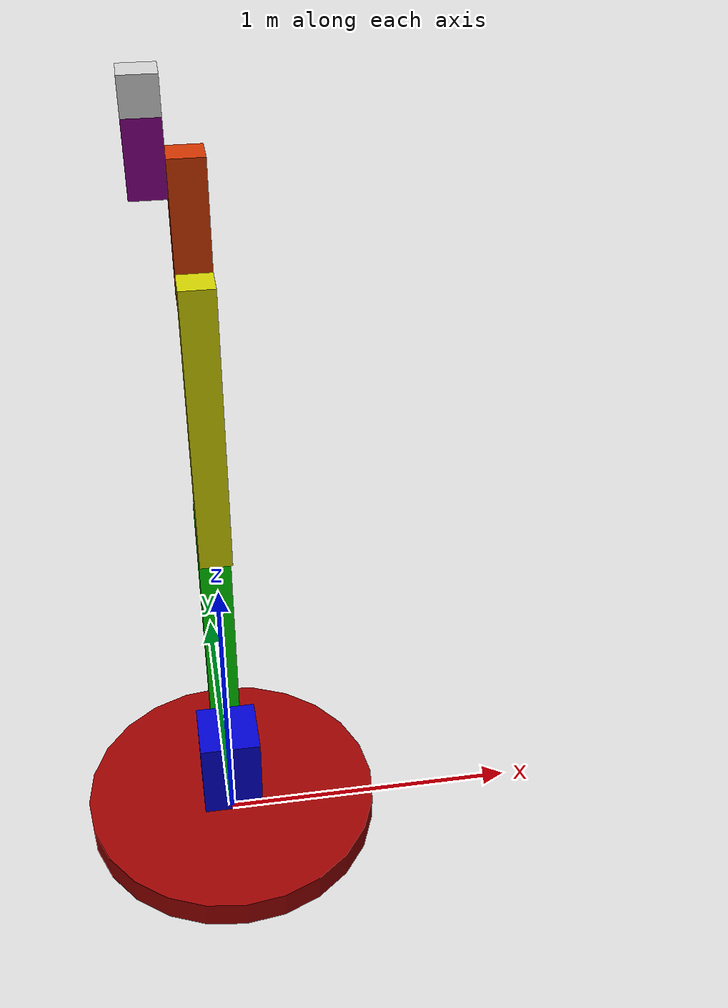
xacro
<?xml version="1.0"?>

<!-- RRRRRR (simple) manipulator -->

<robot name="simple_manipulator" xmlns:xacro="http://www.ros.org/wiki/xacro">

  <!-- Constants for robot dimensions -->
  <xacro:property name="mass_base_link"  value="1.0" />
  <xacro:property name="radius_base_link"  value="0.5" />
  <xacro:property name="length_base_link"  value="0.1" />

  <xacro:property name="mass_shoulder_link"  value="1.0" />
  <xacro:property name="x_length_shoulder_link"  value="0.2" />
  <xacro:property name="y_length_shoulder_link"  value="0.2" />
  <xacro:property name="z_length_shoulder_link"  value="0.3" />

  <xacro:property name="mass_arm_link"  value="5.0" />
  <xacro:property name="x_length_arm_link"  value="0.1" />
  <xacro:property name="y_length_arm_link"  value="0.1" />
  <xacro:property name="z_length_arm_link"  value="0.9" />

  <xacro:property name="mass_forearm_link"  value="5.0" />
  <xacro:property name="x_length_forearm_link"  value="0.1" />
  <xacro:property name="y_length_forearm_link"  value="0.1" />
  <xacro:property name="z_length_forearm_link"  value="0.9" />

  <xacro:property name="mass_wrist_1_link"  value="1.0" />
  <xacro:property name="x_length_wrist_1_link"  value="0.1" />
  <xacro:property name="y_length_wrist_1_link"  value="0.1" />
  <xacro:property name="z_length_wrist_1_link"  value="0.4" />

  <xacro:property name="mass_wrist_2_link"  value="1.0" />
  <xacro:property name="x_length_wrist_2_link"  value="0.1" />
  <xacro:property name="y_length_wrist_2_link"  value="0.1" />
  <xacro:property name="z_length_wrist_2_link"  value="0.2" />

  <xacro:property name="mass_wrist_3_link"  value="1.0" />
  <xacro:property name="x_length_wrist_3_link"  value="0.1" />
  <xacro:property name="y_length_wrist_3_link"  value="0.1" />
  <xacro:property name="z_length_wrist_3_link"  value="0.1" />

  <material name="red">
    <color rgba="0.6 0.0 0.0 1.0"/>
  </material>

  <material name="green">
    <color rgba="0.0 0.8 0.0 1.0"/>
  </material>

  <material name="blue">
    <color rgba="0.0 0.0 0.8 1.0"/>
  </material>

  <material name="yellow">
    <color rgba="0.8 0.8 0.0 1.0"/>
  </material>

  <material name="orange">
    <color rgba="0.8 0.2 0.0 1.0"/>
  </material>

  <material name="purple">
    <color rgba="0.5 0.0 0.5 1.0"/>
  </material>

  <material name="gray">
    <color rgba="0.8 0.8 0.8 1.0"/>
  </material>

  <xacro:macro name="cylindrical_link" params="name length radius mass color">
    <link name="${name}">
      <collision>
        <origin xyz="0 0 ${length/2}" rpy="0 0 0"/>
        <geometry>
          <cylinder length="${length}" radius="${radius}"/>
        </geometry>
      </collision>

      <visual>
        <origin xyz="0 0 ${length/2}" rpy="0 0 0"/>
        <geometry>
          <cylinder length="${length}" radius="${radius}"/>
        </geometry>
        <material name="${color}"/>
      </visual>

      <inertial>
        <origin xyz="0 0 0" rpy="0 0 0"/>
        <mass value="${mass}"/>
        <inertia
          ixx="${(1/12.)*mass*((3*radius**2) + (length**2))}" ixy="0.0" ixz="0.0"
          iyy="${(1/12.)*mass*((3*radius**2) + (length**2))}" iyz="0.0"
          izz="${0.5*mass*radius**2}"/>
      </inertial>
    </link>
  </xacro:macro>

  <xacro:macro name="cuboid_link" params="name x_length y_length z_length mass color">

    <link name="${name}">
      <collision>
        <origin xyz="0 0 ${z_length/2}" rpy="0 0 0"/>
        <geometry>
          <box size="${x_length} ${y_length} ${z_length}"/>
        </geometry>
      </collision>

      <visual>
        <origin xyz="0 0 ${z_length/2}" rpy="0 0 0"/>
        <geometry>
          <box size="${x_length} ${y_length} ${z_length}"/>
        </geometry>
        <material name="${color}"/>
      </visual>

      <inertial>
        <origin xyz="0 0 0" rpy="0 0 0"/>
        <mass value="${mass}"/>
        <inertia
          ixx="${(1/12.)*mass*(y_length**2 + z_length**2)}" ixy="0.0" ixz="0.0"
          iyy="${(1/12.)*mass*(x_length**2 + z_length**2)}" iyz="0.0"
          izz="${(1/12.)*mass*(x_length**2 + y_length**2)}"/>
      </inertial>
    </link>
  </xacro:macro>

  <link name="world"/>

  <joint name="fixed_joint" type="fixed">
    <parent link="world"/>
    <child link="base_link"/>
  </joint>

  <xacro:cylindrical_link
    name="base_link"
    length="${length_base_link}"
    radius="${radius_base_link}"
    mass="${mass_base_link}"
    color="red"/>

  <joint name="shoulder_yaw_joint" type="revolute">
    <parent link="base_link"/>
    <child link="shoulder_link"/>
    <origin xyz="0 0 ${length_base_link}" rpy="0 0 0"/>
    <axis xyz="0 0 1"/>
    <limit lower="${-pi}" upper="${pi}" effort="1000.0" velocity="5.0"/>
  </joint>

  <xacro:cuboid_link
    name="shoulder_link"
    x_length="${x_length_shoulder_link}"
    y_length="${y_length_shoulder_link}"
    z_length="${z_length_shoulder_link}"
    mass="${mass_shoulder_link}"
    color="blue"/>

  <joint name="shoulder_pitch_joint" type="revolute">
    <parent link="shoulder_link"/>
    <child link="arm_link"/>
    <origin xyz="0 ${x_length_shoulder_link/2+x_length_arm_link/2} ${z_length_shoulder_link-0.1}" rpy="0 0 0"/>
    <axis xyz="0 1 0"/>
    <limit lower="${-pi/2}" upper="${pi/2}" effort="1000.0" velocity="5.0"/>
  </joint>

  <xacro:cuboid_link
    name="arm_link"
    x_length="${x_length_arm_link}"
    y_length="${y_length_arm_link}"
    z_length="${z_length_arm_link}"
    mass="${mass_arm_link}"
    color="green"/>

  <joint name="elbow_joint" type="revolute">
    <parent link="arm_link"/>
    <child link="forearm_link"/>
    <origin xyz="0 ${-x_length_arm_link/2-x_length_forearm_link/2} ${z_length_arm_link-0.1}" rpy="0 0 0"/>
    <axis xyz="0 1 0"/>
    <limit lower="${-pi}" upper="${pi}" effort="1000.0" velocity="5.0"/>
  </joint>

  <xacro:cuboid_link
    name="forearm_link"
    x_length="${x_length_forearm_link}"
    y_length="${y_length_forearm_link}"
    z_length="${z_length_forearm_link}"
    mass="${mass_forearm_link}"
    color="yellow"/>

  <joint name="wrist_1_joint" type="revolute">
    <parent link="forearm_link"/>
    <child link="wrist_1_link"/>
    <origin xyz="0 ${x_length_wrist_1_link/2+x_length_wrist_2_link/2} ${z_length_forearm_link-0.1}" rpy="0 0 0"/>
    <axis xyz="0 1 0"/>
    <limit lower="${-pi}" upper="${pi}" effort="1000.0" velocity="5.0"/>
  </joint>

  <xacro:cuboid_link
    name="wrist_1_link"
    x_length="${x_length_wrist_1_link}"
    y_length="${y_length_wrist_1_link}"
    z_length="${z_length_wrist_1_link}"
    mass="${mass_wrist_1_link}"
    color="orange"/>

  <joint name="wrist_2_joint" type="revolute">
    <parent link="wrist_1_link"/>
    <child link="wrist_2_link"/>
    <origin xyz="${-x_length_wrist_2_link/2-x_length_wrist_3_link/2} 0 ${z_length_wrist_1_link-0.1}" rpy="0 0 0"/>
    <axis xyz="1 0 0"/>
    <limit lower="${-pi}" upper="${pi}" effort="1000.0" velocity="5.0"/>
  </joint>

  <xacro:cuboid_link
    name="wrist_2_link"
    x_length="${x_length_wrist_2_link}"
    y_length="${y_length_wrist_2_link}"
    z_length="${z_length_wrist_2_link}"
    mass="${mass_wrist_2_link}"
    color="purple"/>

  <joint name="wrist_3_joint" type="revolute">
    <parent link="wrist_2_link"/>
    <child link="wrist_3_link"/>
    <origin xyz="0 0 ${z_length_wrist_2_link}" rpy="0 0 0"/>
    <axis xyz="0 0 1"/>
    <limit lower="${-pi}" upper="${pi}" effort="1000.0" velocity="5.0"/>
  </joint>

  <xacro:cuboid_link
    name="wrist_3_link"
    x_length="${x_length_wrist_3_link}"
    y_length="${y_length_wrist_3_link}"
    z_length="${z_length_wrist_3_link}"
    mass="${mass_wrist_3_link}"
    color="gray"/>

  <joint name="eef_joint" type="fixed">
    <parent link="wrist_3_link"/>
    <child link="eef_link"/>
    <origin xyz="0 0 ${z_length_wrist_3_link}" rpy="0 0 0"/>
  </joint>

  <link name="eef_link"/>

</robot>
